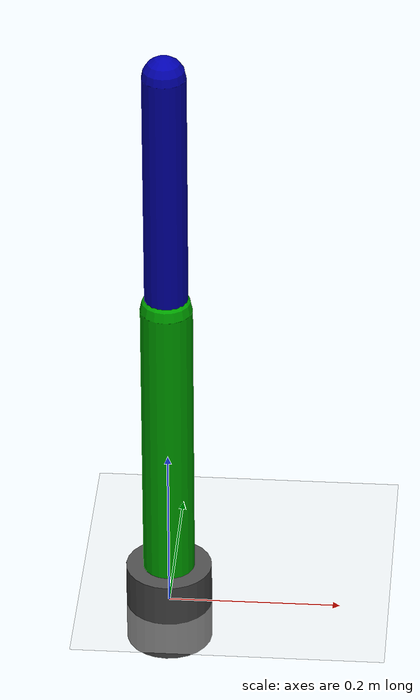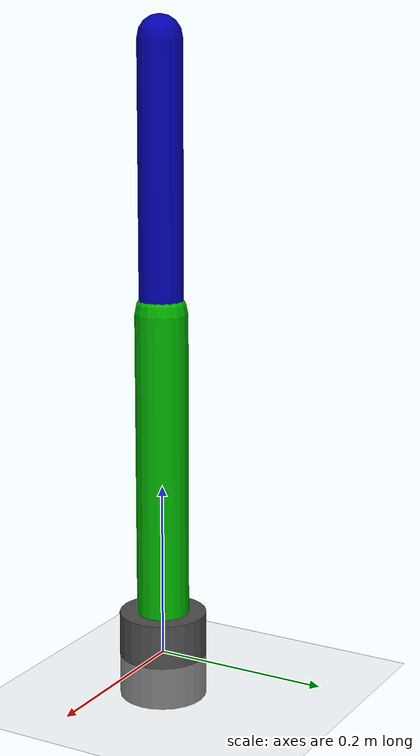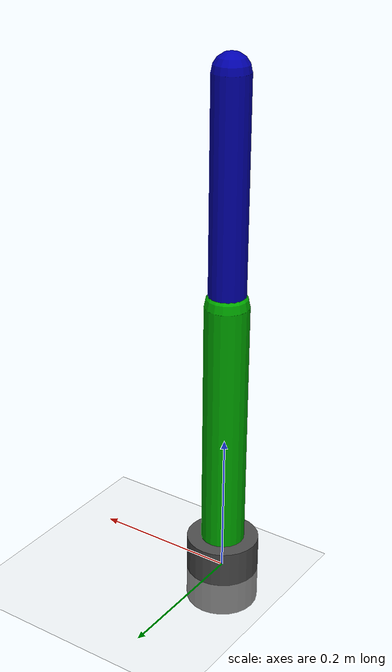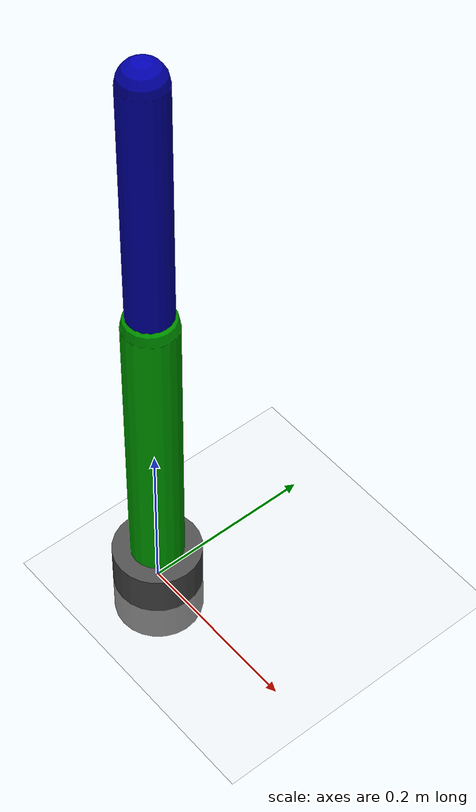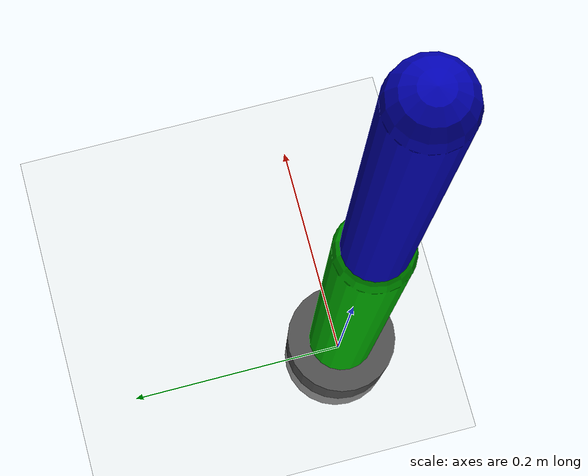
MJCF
<mujoco model="2d_arm_free">
    <option timestep="0.0005" gravity="0 0 -9.81"/>

    <worldbody>
        <light pos="0 0 3" dir="0 0 -1"/>
        <geom type="plane" size="10 10 0.1" rgba="0.9 0.9 0.9 1"/>

        <!-- Root base attached directly to the ground at Z = 0 -->
        <body name="base" pos="0 0 0">
            <geom type="cylinder" size="0.05 0.05" rgba="0.3 0.3 0.3 1"/>

            <!-- Link 1 (Rotates around Y-axis) -->
            <body name="link1" pos="0 0 0">
                <joint name="joint1" type="hinge" axis="0 1 0" pos="0 0 0"/>
                <geom type="capsule" fromto="0 0 0 0 0 0.4" size="0.03" rgba="0 0.7 0 1"/>

                <!-- Link 2 (Rotates around Y-axis) -->
                <body name="link2" pos="0 0 0.4">
                    <joint name="joint2" type="hinge" axis="0 1 0" pos="0 0 0"/>
                    <geom type="capsule" fromto="0 0 0 0 0 0.3" size="0.025" rgba="0 0 0.7 1"/>
                </body>

                <!-- Link 3 (Rotates around Y-axis) this is a second rotating arm and completely optional -->
                <body name="link3" pos="0 0 0.4">
                    <joint name="joint3" type="hinge" axis="0 1 0" pos="0 0 0"/>
                    <geom type="capsule" fromto="0 0 0 0 0 0.3" size="0.025" rgba="0.7 0 0.0 1"/>
                </body>

            </body>
        </body>
    </worldbody>
</mujoco>
